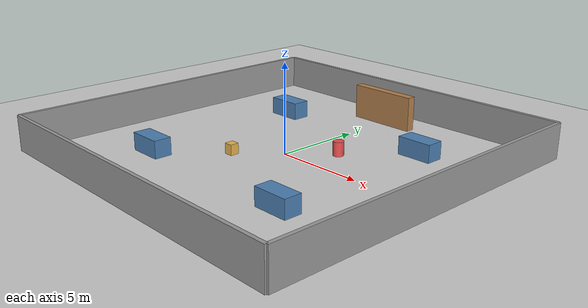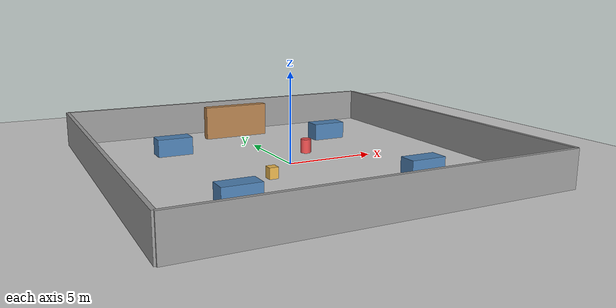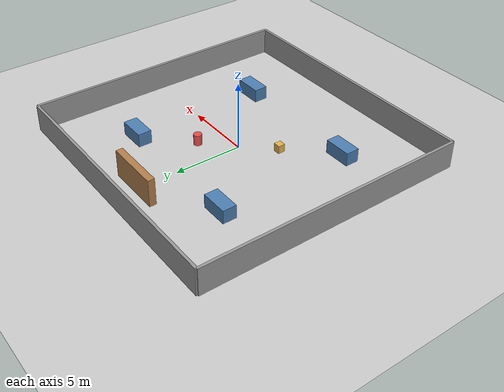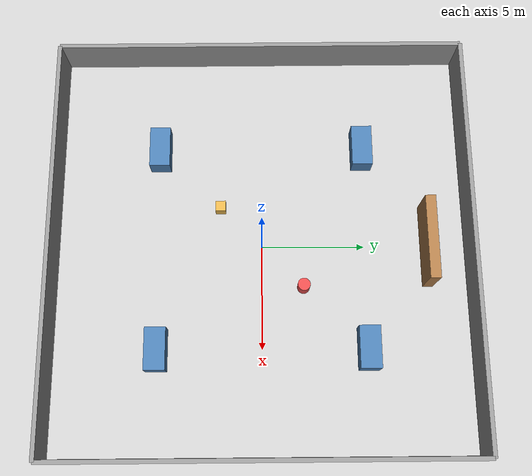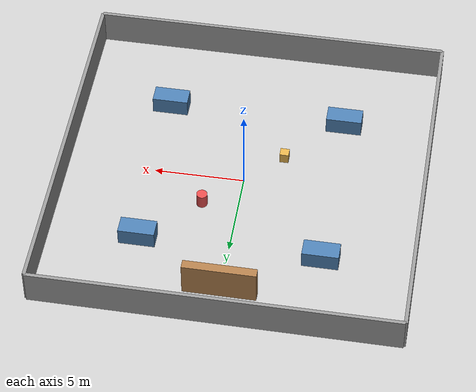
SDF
<?xml version="1.0" ?>
<sdf version="1.6">
  <world name="workshop">

    <!-- Lighting -->
    <include>
      <uri>model://sun</uri>
    </include>

    <!-- Ground Plane -->
    <include>
      <uri>model://ground_plane</uri>
    </include>

    <!-- Workshop Floor -->
    <model name="workshop_floor">
      <static>true</static>
      <link name="floor">
        <collision name="collision">
          <geometry>
            <box>
              <size>20 20 0.1</size>
            </box>
          </geometry>
        </collision>
        <visual name="visual">
          <geometry>
            <box>
              <size>20 20 0.1</size>
            </box>
          </geometry>
          <material>
            <ambient>0.7 0.7 0.7 1</ambient>
            <diffuse>0.8 0.8 0.8 1</diffuse>
          </material>
        </visual>
      </link>
      <pose>0 0 -0.05 0 0 0</pose>
    </model>

    <!-- Walls -->
    <model name="wall_north">
      <static>true</static>
      <link name="link">
        <collision name="collision">
          <geometry>
            <box>
              <size>20 0.2 2</size>
            </box>
          </geometry>
        </collision>
        <visual name="visual">
          <geometry>
            <box>
              <size>20 0.2 2</size>
            </box>
          </geometry>
          <material>
            <ambient>0.5 0.5 0.5 1</ambient>
            <diffuse>0.6 0.6 0.6 1</diffuse>
          </material>
        </visual>
      </link>
      <pose>0 10 1 0 0 0</pose>
    </model>

    <model name="wall_south">
      <static>true</static>
      <link name="link">
        <collision name="collision">
          <geometry>
            <box>
              <size>20 0.2 2</size>
            </box>
          </geometry>
        </collision>
        <visual name="visual">
          <geometry>
            <box>
              <size>20 0.2 2</size>
            </box>
          </geometry>
          <material>
            <ambient>0.5 0.5 0.5 1</ambient>
            <diffuse>0.6 0.6 0.6 1</diffuse>
          </material>
        </visual>
      </link>
      <pose>0 -10 1 0 0 0</pose>
    </model>

    <model name="wall_east">
      <static>true</static>
      <link name="link">
        <collision name="collision">
          <geometry>
            <box>
              <size>0.2 20 2</size>
            </box>
          </geometry>
        </collision>
        <visual name="visual">
          <geometry>
            <box>
              <size>0.2 20 2</size>
            </box>
          </geometry>
          <material>
            <ambient>0.5 0.5 0.5 1</ambient>
            <diffuse>0.6 0.6 0.6 1</diffuse>
          </material>
        </visual>
      </link>
      <pose>10 0 1 0 0 0</pose>
    </model>

    <model name="wall_west">
      <static>true</static>
      <link name="link">
        <collision name="collision">
          <geometry>
            <box>
              <size>0.2 20 2</size>
            </box>
          </geometry>
        </collision>
        <visual name="visual">
          <geometry>
            <box>
              <size>0.2 20 2</size>
            </box>
          </geometry>
          <material>
            <ambient>0.5 0.5 0.5 1</ambient>
            <diffuse>0.6 0.6 0.6 1</diffuse>
          </material>
        </visual>
      </link>
      <pose>-10 0 1 0 0 0</pose>
    </model>

    <!-- Workstations -->
    <model name="workstation_1">
      <static>true</static>
      <link name="link">
        <collision name="collision">
          <geometry>
            <box>
              <size>2 1 1</size>
            </box>
          </geometry>
        </collision>
        <visual name="visual">
          <geometry>
            <box>
              <size>2 1 1</size>
            </box>
          </geometry>
          <material>
            <ambient>0.2 0.4 0.6 1</ambient>
            <diffuse>0.3 0.5 0.7 1</diffuse>
          </material>
        </visual>
      </link>
      <pose>-5 5 0.5 0 0 0</pose>
    </model>

    <model name="workstation_2">
      <static>true</static>
      <link name="link">
        <collision name="collision">
          <geometry>
            <box>
              <size>2 1 1</size>
            </box>
          </geometry>
        </collision>
        <visual name="visual">
          <geometry>
            <box>
              <size>2 1 1</size>
            </box>
          </geometry>
          <material>
            <ambient>0.2 0.4 0.6 1</ambient>
            <diffuse>0.3 0.5 0.7 1</diffuse>
          </material>
        </visual>
      </link>
      <pose>5 5 0.5 0 0 0</pose>
    </model>

    <model name="workstation_3">
      <static>true</static>
      <link name="link">
        <collision name="collision">
          <geometry>
            <box>
              <size>2 1 1</size>
            </box>
          </geometry>
        </collision>
        <visual name="visual">
          <geometry>
            <box>
              <size>2 1 1</size>
            </box>
          </geometry>
          <material>
            <ambient>0.2 0.4 0.6 1</ambient>
            <diffuse>0.3 0.5 0.7 1</diffuse>
          </material>
        </visual>
      </link>
      <pose>-5 -5 0.5 0 0 0</pose>
    </model>

    <model name="workstation_4">
      <static>true</static>
      <link name="link">
        <collision name="collision">
          <geometry>
            <box>
              <size>2 1 1</size>
            </box>
          </geometry>
        </collision>
        <visual name="visual">
          <geometry>
            <box>
              <size>2 1 1</size>
            </box>
          </geometry>
          <material>
            <ambient>0.2 0.4 0.6 1</ambient>
            <diffuse>0.3 0.5 0.7 1</diffuse>
          </material>
        </visual>
      </link>
      <pose>5 -5 0.5 0 0 0</pose>
    </model>

    <!-- Storage Rack -->
    <model name="storage_rack">
      <static>true</static>
      <link name="link">
        <collision name="collision">
          <geometry>
            <box>
              <size>4 0.5 2</size>
            </box>
          </geometry>
        </collision>
        <visual name="visual">
          <geometry>
            <box>
              <size>4 0.5 2</size>
            </box>
          </geometry>
          <material>
            <ambient>0.6 0.4 0.2 1</ambient>
            <diffuse>0.7 0.5 0.3 1</diffuse>
          </material>
        </visual>
      </link>
      <pose>0 8 1 0 0 0</pose>
    </model>

    <!-- Obstacles -->
    <model name="obstacle_1">
      <static>true</static>
      <link name="link">
        <collision name="collision">
          <geometry>
            <cylinder>
              <radius>0.3</radius>
              <length>0.8</length>
            </cylinder>
          </geometry>
        </collision>
        <visual name="visual">
          <geometry>
            <cylinder>
              <radius>0.3</radius>
              <length>0.8</length>
            </cylinder>
          </geometry>
          <material>
            <ambient>0.8 0.2 0.2 1</ambient>
            <diffuse>0.9 0.3 0.3 1</diffuse>
          </material>
        </visual>
      </link>
      <pose>2 2 0.4 0 0 0</pose>
    </model>

    <model name="obstacle_2">
      <static>true</static>
      <link name="link">
        <collision name="collision">
          <geometry>
            <box>
              <size>0.5 0.5 0.6</size>
            </box>
          </geometry>
        </collision>
        <visual name="visual">
          <geometry>
            <box>
              <size>0.5 0.5 0.6</size>
            </box>
          </geometry>
          <material>
            <ambient>0.8 0.6 0.2 1</ambient>
            <diffuse>0.9 0.7 0.3 1</diffuse>
          </material>
        </visual>
      </link>
      <pose>-2 -2 0.3 0 0 0</pose>
    </model>

    <!-- Physics settings -->
    <physics type="ode">
      <real_time_update_rate>1000</real_time_update_rate>
      <max_step_size>0.001</max_step_size>
    </physics>

  </world>
</sdf>
